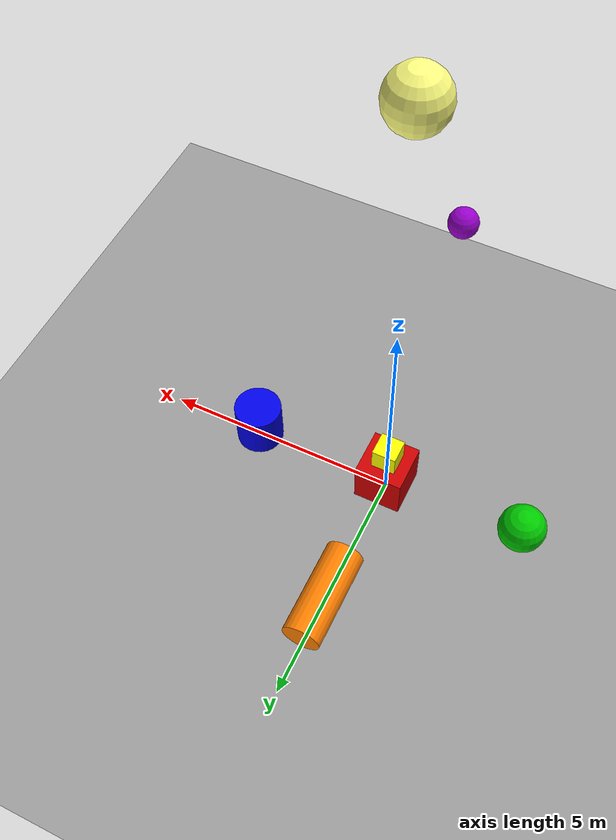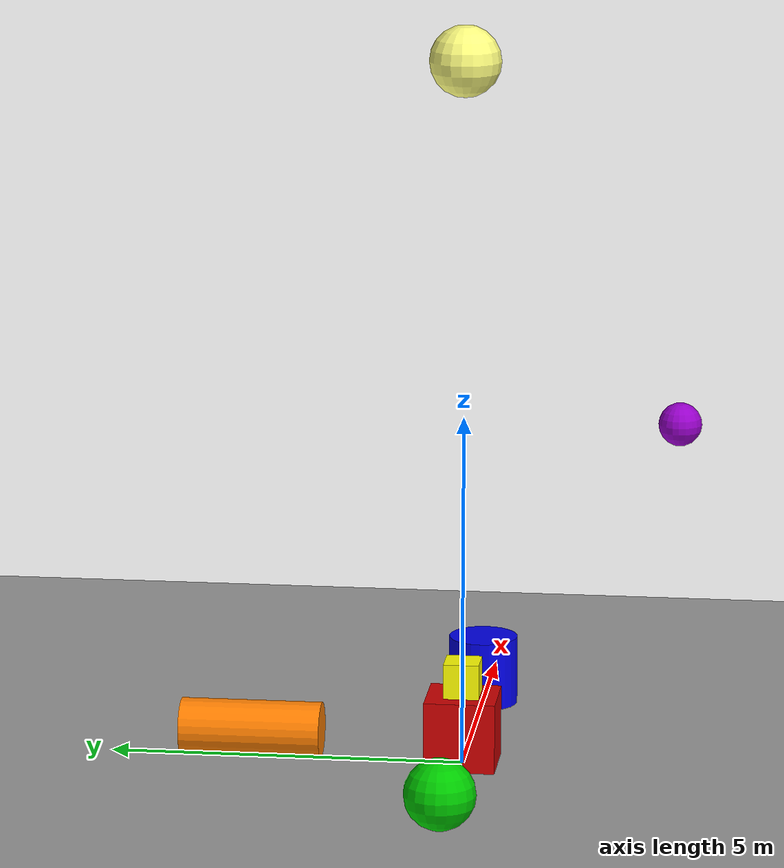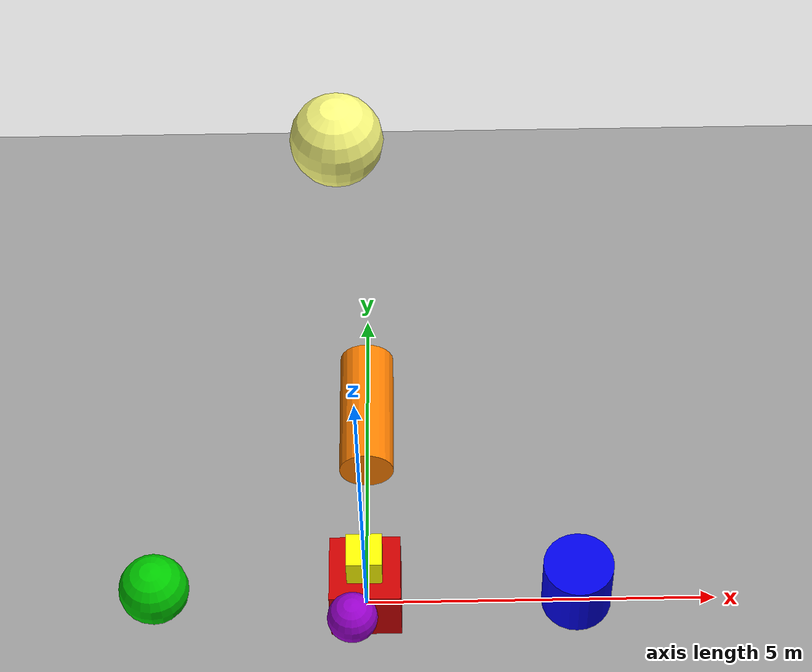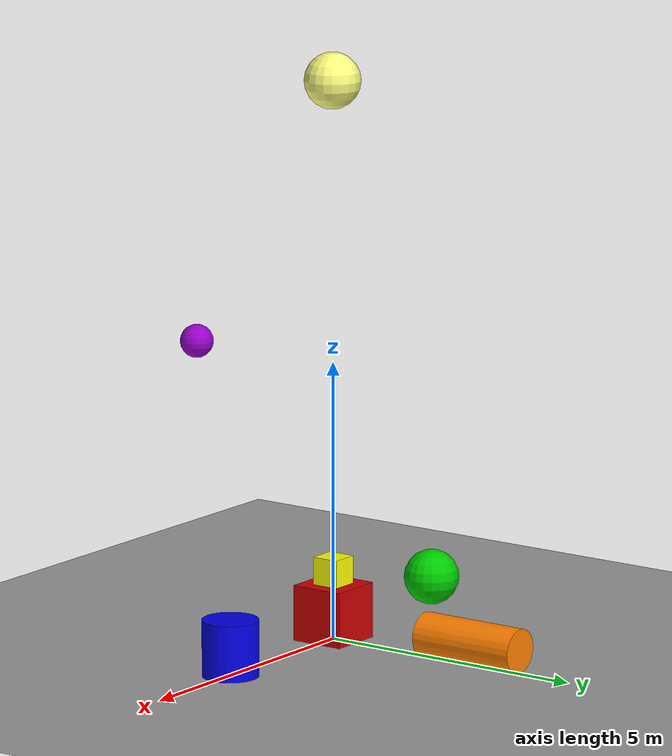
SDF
<?xml version="1.0" ?>
<sdf version="1.10">
  <world name="world_with_objects">

    <!-- ── Physics ─────────────────────────────────────── -->
    <physics name="1ms" type="ignored">
      <max_step_size>0.001</max_step_size>
      <real_time_factor>1.0</real_time_factor>
    </physics>

    <!-- ── Required Plugins ─────────────────────────────── -->
    <plugin filename="gz-sim-physics-system"
            name="gz::sim::systems::Physics"/>
    <plugin filename="gz-sim-user-commands-system"
            name="gz::sim::systems::UserCommands"/>
    <plugin filename="gz-sim-scene-broadcaster-system"
            name="gz::sim::systems::SceneBroadcaster"/>

    <!-- ── Sun Visual + Light ───────────────────────────────── -->
    <model name="sun_visual">
      <static>true</static>
      <pose>0 0 10 0 0 0</pose>
      <link name="link">
        <visual name="visual">
          <geometry>
            <sphere>
              <radius>0.5</radius>
            </sphere>
          </geometry>
          <material>
            <ambient>1.0 1.0 0.5 1</ambient>
            <diffuse>1.0 1.0 0.5 1</diffuse>
            <specular>1.0 1.0 1.0 1</specular>
            <emissive>1.0 1.0 0.5 1</emissive>
          </material>
        </visual>
      </link>
    </model>

    <!-- ── Sun ──────────────────────────────────────────── -->
    <light type="directional" name="sun">
      <cast_shadows>true</cast_shadows>
      <pose>0 0 10 0 0 0</pose>
      <diffuse>0.9 0.9 0.9 1</diffuse>
      <specular>0.3 0.3 0.3 1</specular>
      <attenuation>
        <range>1000</range>
        <constant>0.9</constant>
        <linear>0.01</linear>
        <quadratic>0.001</quadratic>
      </attenuation>
      <direction>-0.5 0.1 -0.9</direction>
    </light>

    <!-- ── Ground Plane ─────────────────────────────────── -->
    <model name="ground_plane">
      <static>true</static>
      <link name="link">
        <collision name="collision">
          <geometry>
            <plane>
              <normal>0 0 1</normal>
            </plane>
          </geometry>
          <surface>
    	       <bounce>
      		    <restitution_coefficient>1.0</restitution_coefficient>
      		    <threshold>0.01</threshold>
   	         </bounce>
  	 </surface>
        </collision>
        <visual name="visual">
          <geometry>
            <plane>
              <normal>0 0 1</normal>
              <size>100 100</size>
            </plane>
          </geometry>
          <material>
            <ambient>0.6 0.6 0.6 1</ambient>
            <diffuse>0.6 0.6 0.6 1</diffuse>
            <specular>0.1 0.1 0.1 1</specular>
          </material>
        </visual>
      </link>
    </model>

    <model name="red_box">
      <static>true</static>

      <pose>0 0 0.5 0 0 0</pose>

      <link name="link">
        <visual name="visual">
          <geometry>
            <box>
              <!-- size: width(X) depth(Y) height(Z) in meters -->
              <size>1.0 1.0 1.0</size>
            </box>
          </geometry>
          <material>
            <!-- Colors are R G B Alpha, range 0.0 to 1.0 -->
            <ambient>0.8 0.0 0.0 1</ambient>
            <diffuse>0.8 0.0 0.0 1</diffuse>
            <specular>0.2 0.0 0.0 1</specular>
          </material>
        </visual>
        <collision name="collision">
          <geometry>
            <box>
              <size>1.0 1.0 1.0</size>
            </box>
          </geometry>
        </collision>
      </link>
    </model>

    <model name="blue_cylinder">
      <static>true</static>
      <pose>3 0 0.5 0 0 0</pose>
      <link name="link">
        <visual name="visual">
          <geometry>
            <cylinder>
              <radius>0.5</radius>
              <length>1.0</length>
            </cylinder>
          </geometry>
          <material>
            <ambient>0.0 0.0 0.9 1</ambient>
            <diffuse>0.0 0.0 0.9 1</diffuse>
            <specular>0.0 0.0 0.3 1</specular>
          </material>
        </visual>
        <collision name="collision">
          <geometry>
            <cylinder>
              <radius>0.5</radius>
              <length>1.0</length>
            </cylinder>
          </geometry>
        </collision>
      </link>
    </model>

    <model name="green_sphere">
      <static>true</static>
      <pose>-3 0 0.5 0 0 0</pose>
      <link name="link">
        <visual name="visual">
          <geometry>
            <sphere>
              <radius>0.5</radius>
            </sphere>
          </geometry>
          <material>
            <ambient>0.0 0.8 0.0 1</ambient>
            <diffuse>0.0 0.8 0.0 1</diffuse>
            <specular>0.0 0.2 0.0 1</specular>
          </material>
        </visual>
        <collision name="collision">
          <geometry>
            <sphere>
              <radius>0.5</radius>
            </sphere>
          </geometry>
        </collision>
      </link>
    </model>

    <model name="yellow_box_top">
      <static>true</static>
      <pose>0 0 1.25 0 0 0</pose>
      <link name="link">
        <visual name="visual">
          <geometry>
            <box>
              <size>0.5 0.5 0.5</size>
            </box>
          </geometry>
          <material>
            <ambient>1.0 1.0 0.0 1</ambient>
            <diffuse>1.0 1.0 0.0 1</diffuse>
            <specular>0.3 0.3 0.0 1</specular>
          </material>
        </visual>
        <collision name="collision">
          <geometry>
            <box>
              <size>0.5 0.5 0.5</size>
            </box>
          </geometry>
        </collision>
      </link>
    </model>

    <model name="orange_cylinder_rotated">
      <static>true</static>
      <!-- Roll=1.5708 radians = 90 degrees around X axis -->
      <pose>0 3 0.4 1.5708 0 0</pose>
      <link name="link">
        <visual name="visual">
          <geometry>
            <cylinder>
              <radius>0.4</radius>
              <length>2.0</length>
            </cylinder>
          </geometry>
          <material>
            <ambient>1.0 0.5 0.0 1</ambient>
            <diffuse>1.0 0.5 0.0 1</diffuse>
            <specular>0.3 0.2 0.0 1</specular>
          </material>
        </visual>
        <collision name="collision">
          <geometry>
            <cylinder>
              <radius>0.4</radius>
              <length>2.0</length>
            </cylinder>
          </geometry>
        </collision>
      </link>
    </model>

    <model name="dynamic_purple_sphere">
      <pose>0 -3 5 0 0 0</pose>
      <link name="link">

        <!-- REQUIRED for dynamic objects: mass and inertia -->
        <inertial>
          <mass>1.0</mass>
          <inertia>
            <!-- Moment of inertia for a solid sphere: (2/5)*m*r^2 -->
            <ixx>0.036</ixx>
            <ixy>0</ixy>
            <ixz>0</ixz>
            <iyy>0.036</iyy>
            <iyz>0</iyz>
            <izz>0.036</izz>
          </inertia>
        </inertial>

        <visual name="visual">
          <geometry>
            <sphere>
              <radius>0.3</radius>
            </sphere>
          </geometry>
          <material>
            <ambient>0.6 0.0 0.8 1</ambient>
            <diffuse>0.6 0.0 0.8 1</diffuse>
            <specular>0.2 0.0 0.3 1</specular>
          </material>
        </visual>
        <collision name="collision">
          <surface>
    	     <bounce>
      	  	<restitution_coefficient>0.8</restitution_coefficient>
      	  	<threshold>0.01</threshold>
   	      </bounce>
      	 </surface>
          <geometry>
            <sphere>
              <radius>0.3</radius>
            </sphere>
          </geometry>
        </collision>

      </link>
    </model>

  </world>
</sdf>
